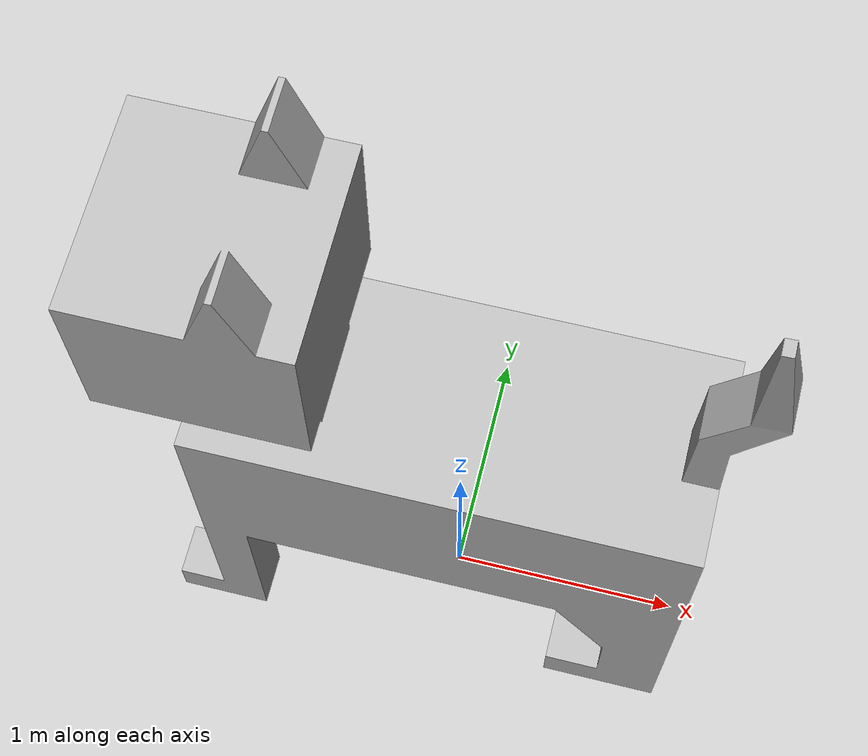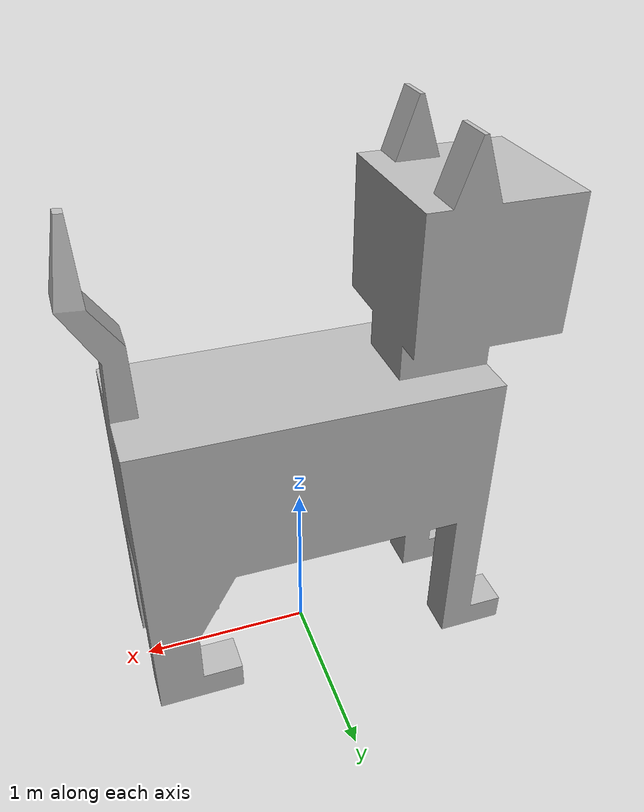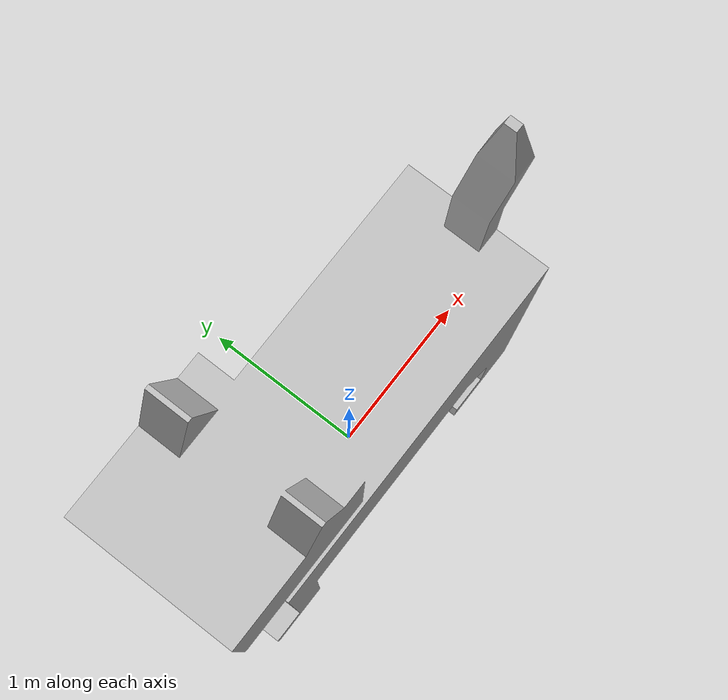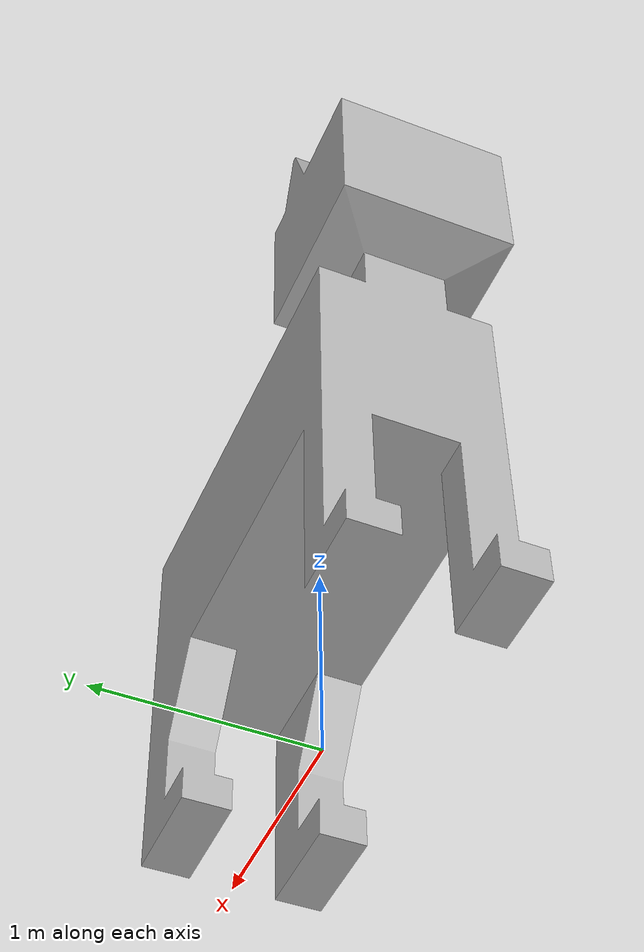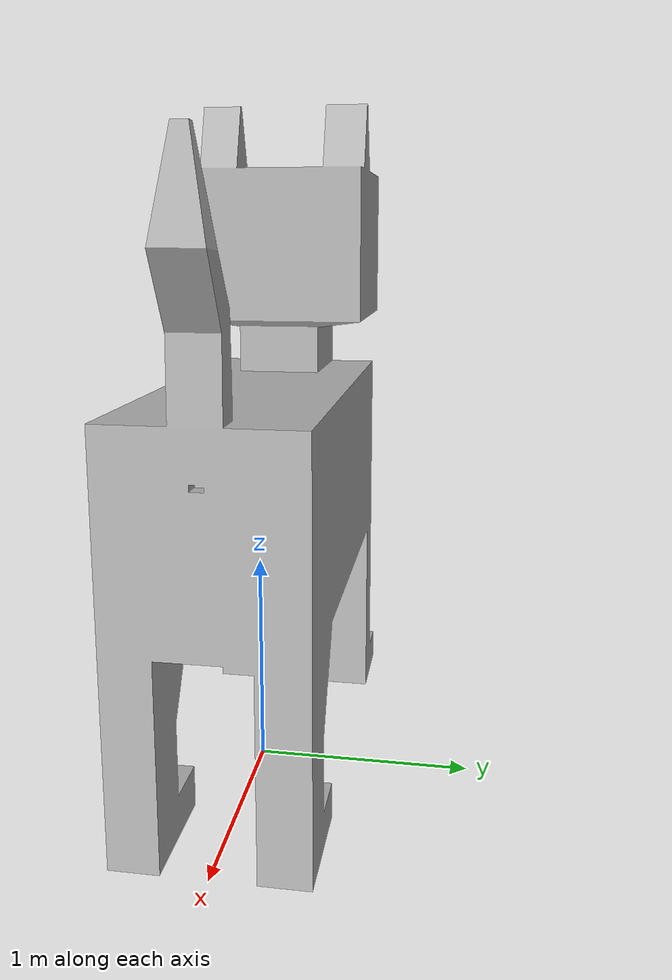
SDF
<?xml version="1.0" ?>
<sdf version="1.4">
  <model name="cat">
    <pose>0 0 0  0 0 0</pose>
    <static>true</static>
    <link name="body">
      <visual name="visual">
          <geometry>
            <mesh><uri>file://media/op/44428273-49b9-4fb6-9af0-f24d3b55115f/Gazeboo/create_world/models/cat/meshes/cat.stl</uri></mesh>
          </geometry>
      </visual>
    </link>
  </model>
</sdf>
